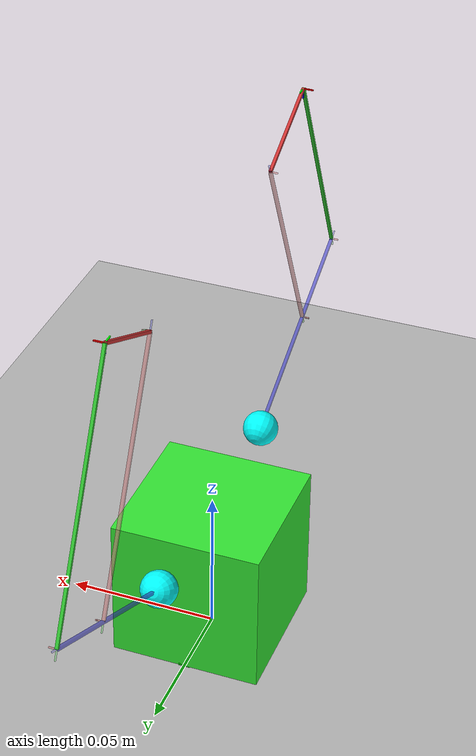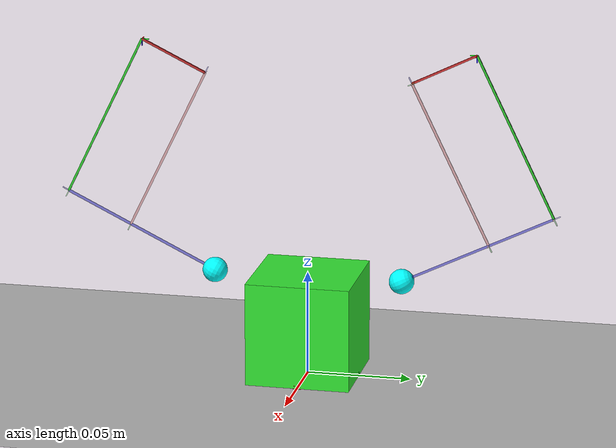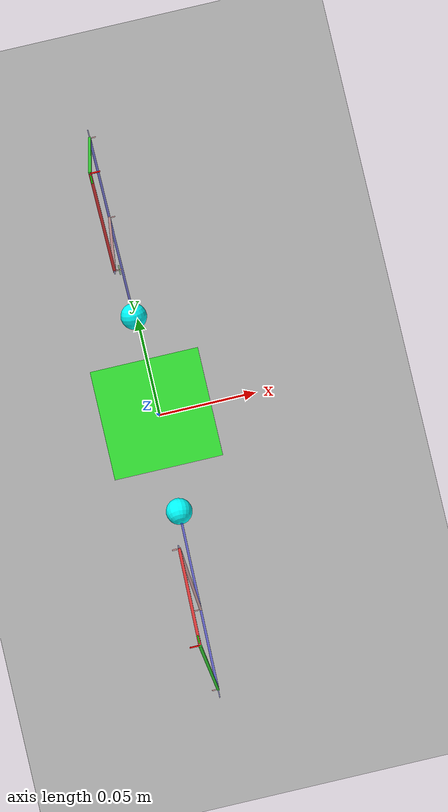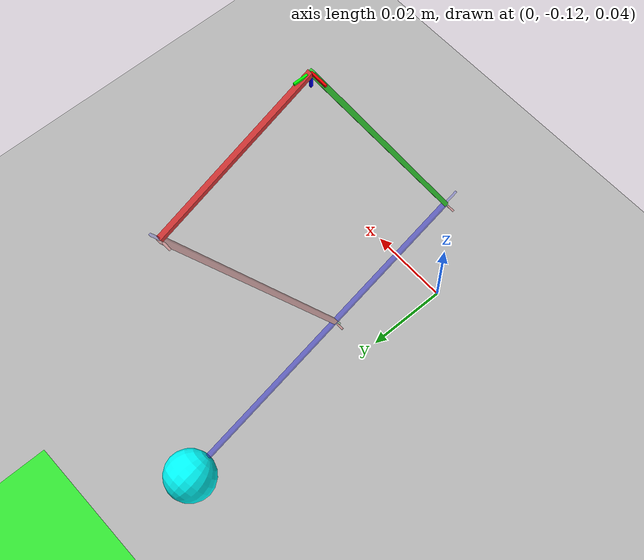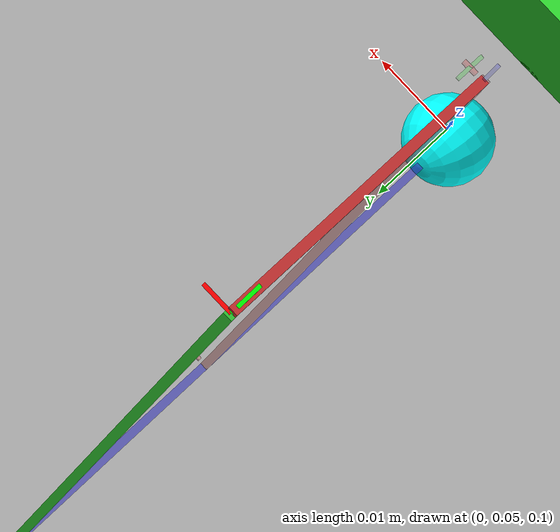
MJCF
<mujoco model="spatial_parallelogram_dual_finger_silicone">
  <!--
       MJX 兼容性注意：
       1. 确保使用 smooth contact (solref/solimp) 而不是 hard contact。
       2. 所有的 mesh/geom 最好是 convex 的（这里用的 sphere/box 都是完美的）。
  -->
  <compiler angle="degree" coordinate="local" eulerseq="xyz" inertiafromgeom="true"/>

  <option timestep="0.001" gravity="0 0 -9.81" iterations="50" tolerance="1e-10"/>

  <visual>
    <headlight diffuse="0.4 0.4 0.4" ambient="0.2 0.2 0.2" specular="0.1 0.1 0.1"/>
    <rgba haze="0.15 0.25 0.35 1"/>
    <global azimuth="120" elevation="-20"/>
  </visual>

  <default>
    <geom type="box" rgba="0.7 0.7 0.7 0.6" contype="0" conaffinity="0"/>
    <joint damping="0.05" armature="0.01" frictionloss="0.01"/>

    <default class="viz_axis">
        <geom type="box" size="0.0008 0.0002 0.0002" contype="0" conaffinity="0" rgba="1 1 1 0.1"/>
    </default>
    <default class="global_axis">
        <geom type="cylinder" size="0.002" contype="0" conaffinity="0"/>
    </default>

    <!-- ==============================================================
         新增：硅胶材质定义 (Smooth-On 00-30 模拟)
         ============================================================== -->
    <default class="silicone_tip">
        <geom friction="1.5 0.1 0.05" solref="0.02 1" solimp="0.95 0.99 0.001" margin="0.001" condim="6" priority="1"/>
    </default>
  </default>

  <asset>
    <texture type="skybox" builtin="gradient" rgb1="0.3 0.5 0.7" rgb2="0 0 0" width="512" height="3072"/>
    <texture type="2d" name="groundplane" builtin="checker" rgb1="0.2 0.3 0.4" rgb2="0.1 0.2 0.3" width="100" height="100"/>
    <material name="groundplane" texture="groundplane" texrepeat="10 10"/>
  </asset>

  <worldbody>

    <camera name="closeup" pos="0.3 -0.3 0.3" xyaxes="0.7 0.7 0 -0.4 0.4 0.8" mode="trackcom"/>

    <geom name="floor" size="0 0 .05" type="plane" material="groundplane" condim="3" contype="1" conaffinity="1"/>
    <light pos="0 0 3" dir="0 0 -1" directional="true" castshadow="true" diffuse="0.8 0.8 0.8" specular="0.3 0.3 0.3"/>

    <body name="world_axis" pos="0 0 0">
        <geom class="global_axis" fromto="0 0 0  0.025 0 0" rgba="1 0 0 1"/>
        <geom class="global_axis" fromto="0 0 0  0 0.025 0" rgba="0 1 0 1"/>
        <geom class="global_axis" fromto="0 0 0  0 0 0.025" rgba="0 0 1 1"/>
    </body>

    <!-- Object 物体-->
    <body name="object" pos="0 0 0.025">
        <freejoint/>
        <!--
             物体也必须有足够的 friction，但主要由指尖的 priority 决定交互。
             这里 condim 设为 3 即可，指尖的 condim=6 会主导碰撞。
        -->
        <geom name="object_geom" type="box" size="0.025 0.025 0.025" rgba="0.2 0.9 0.2 1" mass="0.05" condim="3" contype="1" conaffinity="1"/>
        <site name="object_center" rgba="0 0 0 0"/>
    </body>

    <!-- Hand Base -->
    <body name="hand_base" pos="0 0 0.16" euler="0 180 0">

        <!-- Right Finger -->
        <body name="figer_right" pos="0 -0.08 0">
            <body name="Frame_O_right" pos="0 0 0">
                <geom class="viz_axis" pos="0.0017 0 0" size="0.0017 0.0002 0.0002" rgba="1 0 0 1"/>
                <geom class="viz_axis" pos="0 0.0017 0" size="0.0002 0.0017 0.0002" rgba="0 1 0 1"/>
                <geom class="viz_axis" pos="0 0 0.0017" size="0.0002 0.0002 0.0017" rgba="0 0 1 1"/>
            </body>

            <body name="Link_OA_Chain_right" pos="0 0 0" euler="116 0 0">
                <joint name="OA_active_x_right"  type="hinge" axis="1 0 0" range="0 140" damping="0.5"/>
                <joint name="OA_passive_z_right" type="hinge" axis="0 0 1" range="-60 60" damping="0.1"/>
                <joint name="OA_active_y_right"  type="hinge" axis="0 1 0" range="-16 16" damping="0.5"/>
                <geom name="geom_OA_right" fromto="0 0 0  0 0 -0.034" size="0.0005" rgba="0.8 0.2 0.2 1"/>

                <body name="Link_AC_right" pos="0 0 -0.034" euler="90 0 0">
                    <body name="Frame_A_right" pos="0 0 0">
                        <geom class="viz_axis" pos="0.0017 0 0" rgba="1 0 0 0.1"/>
                        <geom class="viz_axis" pos="0 0.0017 0" size="0.0002 0.0017 0.0002" rgba="0 1 0 0.1"/>
                        <geom class="viz_axis" pos="0 0 0.0017" size="0.0002 0.0002 0.0017" rgba="0 0 1 0.1"/>
                    </body>
                    <joint name="A_passive_x_right" type="hinge" axis="1 0 0" damping="0.1"/>
                    <geom name="geom_AC_right" fromto="0 0 0  0 0 -0.085" size="0.0005" rgba="0.8 0.5 0.5 0.6"/>
                    <site name="site_C_pivot_A_right" pos="0 0 -0.085" size="0.005" rgba="1 1 0 0"/>
                    <site name="site_C_axis_A_right" pos="0.02 0 -0.085" size="0.003" rgba="1 0.5 0 0"/>
                    <body name="Frame_C_from_A_right" pos="0 0 -0.085">
                        <geom class="viz_axis" pos="0.0017 0 0" rgba="1 0 0 0.1"/>
                        <geom class="viz_axis" pos="0 0.0017 0" size="0.0002 0.0017 0.0002" rgba="0 1 0 0.1"/>
                        <geom class="viz_axis" pos="0 0 0.0017" size="0.0002 0.0002 0.0017" rgba="0 0 1 0.1"/>
                    </body>
                </body>
            </body>

            <body name="Link_OB_Chain_right" pos="0 0 0" euler="206 0 0">
                <joint name="OB_active_x_right"  type="hinge" axis="1 0 0" range="-90 50" damping="0.5"/>
                <joint name="OB_passive_z_right" type="hinge" axis="0 0 1" range="-180 180" damping="0.1"/>
                <joint name="OB_active_y_right"  type="hinge" axis="0 1 0" range="-16 16" damping="0.5"/>
                <geom name="geom_OB_right" fromto="0 0 0  0 0 -0.085" size="0.0005" rgba="0.2 0.8 0.2 1"/>

                <body name="Link_BCP_right" pos="0 0 -0.085" euler="-90 0 0">
                    <body name="Frame_B_right" pos="0 0 0">
                        <geom class="viz_axis" pos="0.0017 0 0" rgba="1 0 0 0.1"/>
                        <geom class="viz_axis" pos="0 0.0017 0" size="0.0002 0.0017 0.0002" rgba="0 1 0 0.1"/>
                        <geom class="viz_axis" pos="0 0 0.0017" size="0.0002 0.0002 0.0017" rgba="0 0 1 0.1"/>
                    </body>
                    <joint name="B_passive_x_right" type="hinge" axis="1 0 0" damping="0.1"/>
                    <geom name="geom_BP_right" fromto="0 0 0  0 0 -0.080" size="0.0005" rgba="0.2 0.2 0.8 0.6" />
                    <site name="site_C_pivot_B_right" pos="0 0 -0.034" size="0.005" rgba="1 1 0 0"/>
                    <site name="site_C_axis_B_right" pos="0.02 0 -0.034" size="0.003" rgba="1 0.5 0 0"/>
                    <body name="Frame_C_from_B_right" pos="0 0 -0.034">
                        <geom class="viz_axis" pos="0.0017 0 0" rgba="1 0 0 0.1"/>
                        <geom class="viz_axis" pos="0 0.0017 0" size="0.0002 0.0017 0.0002" rgba="0 1 0 0.1"/>
                        <geom class="viz_axis" pos="0 0 0.0017" size="0.0002 0.0002 0.0017" rgba="0 0 1 0.1"/>
                    </body>
                    <body name="Frame_P_right" pos="0 0 -0.080">
                        <geom class="viz_axis" pos="0.0017 0 0" rgba="1 0 0 0.1"/>
                        <geom class="viz_axis" pos="0 0.0017 0" size="0.0002 0.0017 0.0002" rgba="0 1 0 0.1"/>
                        <geom class="viz_axis" pos="0 0 0.0017" size="0.0002 0.0002 0.0017" rgba="0 0 1 0.1"/>
                    </body>

                    <!-- ================= 使用了硅胶材质类 ================= -->
                    <geom name="tip_geom_right" class="silicone_tip" pos="0 0 -0.080" size="0.006" type="sphere" rgba="0 1 1 1" contype="1" conaffinity="1"/>

                </body>
            </body>
        </body>

        <!-- Left Finger -->
        <body name="figer_left" pos="0 0.08 0" euler="0 0 180">
            <body name="Frame_O_left" pos="0 0 0">
                <geom class="viz_axis" pos="0.0017 0 0" size="0.0017 0.0002 0.0002" rgba="1 0 0 1"/>
                <geom class="viz_axis" pos="0 0.0017 0" size="0.0002 0.0017 0.0002" rgba="0 1 0 1"/>
                <geom class="viz_axis" pos="0 0 0.0017" size="0.0002 0.0002 0.0017" rgba="0 0 1 1"/>
            </body>

            <body name="Link_OA_Chain_left" pos="0 0 0" euler="116 0 0">
                <joint name="OA_active_x_left"  type="hinge" axis="1 0 0" range="0 140" damping="0.5"/>
                <joint name="OA_passive_z_left" type="hinge" axis="0 0 1" range="-60 60" damping="0.1"/>
                <joint name="OA_active_y_left"  type="hinge" axis="0 1 0" range="-16 16" damping="0.5"/>
                <geom name="geom_OA_left" fromto="0 0 0  0 0 -0.034" size="0.0005" rgba="0.8 0.2 0.2 1"/>

                <body name="Link_AC_left" pos="0 0 -0.034" euler="90 0 0">
                    <body name="Frame_A_left" pos="0 0 0">
                        <geom class="viz_axis" pos="0.0017 0 0" rgba="1 0 0 0.1"/>
                        <geom class="viz_axis" pos="0.0017 0 0" size="0.0002 0.0017 0.0002" rgba="0 1 0 0.1"/>
                        <geom class="viz_axis" pos="0 0 0.0017" size="0.0002 0.0002 0.0017" rgba="0 0 1 0.1"/>
                    </body>
                    <joint name="A_passive_x_left" type="hinge" axis="1 0 0" damping="0.1"/>
                    <geom name="geom_AC_left" fromto="0 0 0  0 0 -0.085" size="0.0005" rgba="0.8 0.5 0.5 0.6"/>
                    <site name="site_C_pivot_A_left" pos="0 0 -0.085" size="0.005" rgba="1 1 0 0"/>
                    <site name="site_C_axis_A_left" pos="0.02 0 -0.085" size="0.003" rgba="1 0.5 0 0"/>
                    <body name="Frame_C_from_A_left" pos="0 0 -0.085">
                        <geom class="viz_axis" pos="0.0017 0 0" rgba="1 0 0 0.1"/>
                        <geom class="viz_axis" pos="0 0.0017 0" size="0.0002 0.0017 0.0002" rgba="0 1 0 0.1"/>
                        <geom class="viz_axis" pos="0 0 0.0017" size="0.0002 0.0002 0.0017" rgba="0 0 1 0.1"/>
                    </body>
                </body>
            </body>

            <body name="Link_OB_Chain_left" pos="0 0 0" euler="206 0 0">
                <joint name="OB_active_x_left"  type="hinge" axis="1 0 0" range="-90 50" damping="0.5"/>
                <joint name="OB_passive_z_left" type="hinge" axis="0 0 1" range="-180 180" damping="0.1"/>
                <joint name="OB_active_y_left"  type="hinge" axis="0 1 0" range="-16 16" damping="0.5"/>
                <geom name="geom_OB_left" fromto="0 0 0  0 0 -0.085" size="0.0005" rgba="0.2 0.8 0.2 1"/>

                <body name="Link_BCP_left" pos="0 0 -0.085" euler="-90 0 0">
                    <body name="Frame_B_left" pos="0 0 0">
                        <geom class="viz_axis" pos="0.0017 0 0" rgba="1 0 0 0.1"/>
                        <geom class="viz_axis" pos="0 0.0017 0" size="0.0002 0.0017 0.0002" rgba="0 1 0 0.1"/>
                        <geom class="viz_axis" pos="0 0 0.0017" size="0.0002 0.0002 0.0017" rgba="0 0 1 0.1"/>
                    </body>
                    <joint name="B_passive_x_left" type="hinge" axis="1 0 0" damping="0.1"/>
                    <geom name="geom_BP_left" fromto="0 0 0  0 0 -0.080" size="0.0005" rgba="0.2 0.2 0.8 0.6" />
                    <site name="site_C_pivot_B_left" pos="0 0 -0.034" size="0.005" rgba="1 1 0 0"/>
                    <site name="site_C_axis_B_left" pos="0.02 0 -0.034" size="0.003" rgba="1 0.5 0 0"/>
                    <body name="Frame_C_from_B_left" pos="0 0 -0.034">
                        <geom class="viz_axis" pos="0.0017 0 0" rgba="1 0 0 0.1"/>
                        <geom class="viz_axis" pos="0 0.0017 0" size="0.0002 0.0017 0.0002" rgba="0 1 0 0.1"/>
                        <geom class="viz_axis" pos="0 0 0.0017" size="0.0002 0.0002 0.0017" rgba="0 0 1 0.1"/>
                    </body>
                    <body name="Frame_P_left" pos="0 0 -0.080">
                        <geom class="viz_axis" pos="0.0017 0 0" rgba="1 0 0 0.1"/>
                        <geom class="viz_axis" pos="0 0.0017 0" size="0.0002 0.0017 0.0002" rgba="0 1 0 0.1"/>
                        <geom class="viz_axis" pos="0 0 0.0017" size="0.0002 0.0002 0.0017" rgba="0 0 1 0.1"/>
                    </body>

                    <!-- ================= 使用了硅胶材质类 ================= -->
                    <geom name="tip_geom_left" class="silicone_tip" pos="0 0 -0.080" size="0.006" type="sphere" rgba="0 1 1 1" contype="1" conaffinity="1"/>

                </body>
            </body>
        </body>
    </body>

  </worldbody>

  <equality>
    <connect name="C_pivot_right" site1="site_C_pivot_A_right" site2="site_C_pivot_B_right" solimp="0.9 0.95 0.001" solref="0.02 1"/>
    <connect name="C_axis_right"  site1="site_C_axis_A_right"  site2="site_C_axis_B_right"  solimp="0.9 0.95 0.001" solref="0.02 1"/>
    <connect name="C_pivot_left" site1="site_C_pivot_A_left" site2="site_C_pivot_B_left" solimp="0.9 0.95 0.001" solref="0.02 1"/>
    <connect name="C_axis_left"  site1="site_C_axis_A_left"  site2="site_C_axis_B_left"  solimp="0.9 0.95 0.001" solref="0.02 1"/>
  </equality>

  <tendon>
    <fixed name="limit_angle_diff_right" range="-1.15192 0.331613">
      <joint joint="OB_active_x_right" coef="1"/>
      <joint joint="OA_active_x_right" coef="-1"/>
    </fixed>

    <fixed name="limit_angle_diff_left" range="-1.15192 0.331613">
      <joint joint="OB_active_x_left" coef="1"/>
      <joint joint="OA_active_x_left" coef="-1"/>
    </fixed>
  </tendon>

  <actuator>
    <position name="act_OA_x_right" joint="OA_active_x_right" kp="10" kv="1" ctrlrange="0 2.44346"/>
    <position name="act_OA_y_right" joint="OA_active_y_right" kp="10" kv="1" ctrlrange="-0.28 0.28"/>
    <position name="act_OB_x_right" joint="OB_active_x_right" kp="10" kv="1" ctrlrange="-1.57 0.872665"/>
    <position name="act_OB_y_right" joint="OB_active_y_right" kp="10" kv="1" ctrlrange="-0.28 0.28"/>

    <position name="act_OA_x_left" joint="OA_active_x_left" kp="10" kv="1" ctrlrange="0 2.44346"/>
    <position name="act_OA_y_left" joint="OA_active_y_left" kp="10" kv="1" ctrlrange="-0.28 0.28"/>
    <position name="act_OB_x_left" joint="OB_active_x_left" kp="10" kv="1" ctrlrange="-1.57 0.872665"/>
    <position name="act_OB_y_left" joint="OB_active_y_left" kp="10" kv="1" ctrlrange="-0.28 0.28"/>
  </actuator>

</mujoco>
